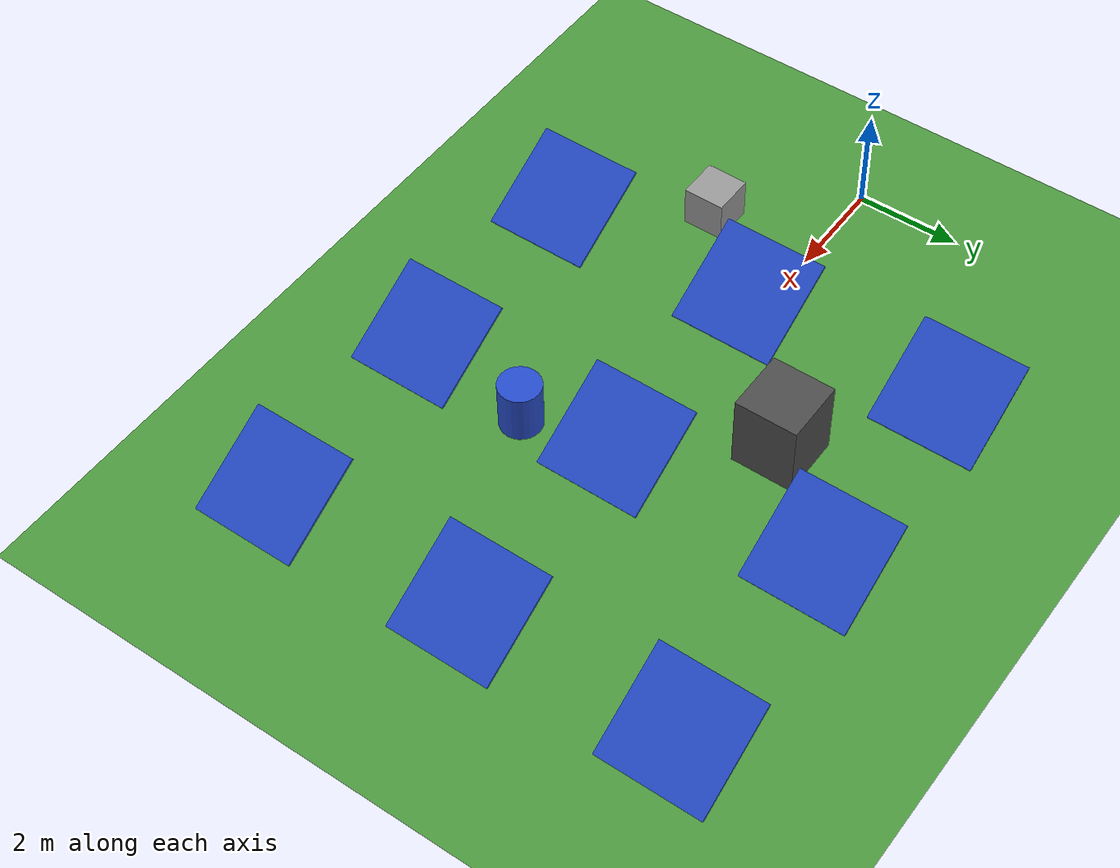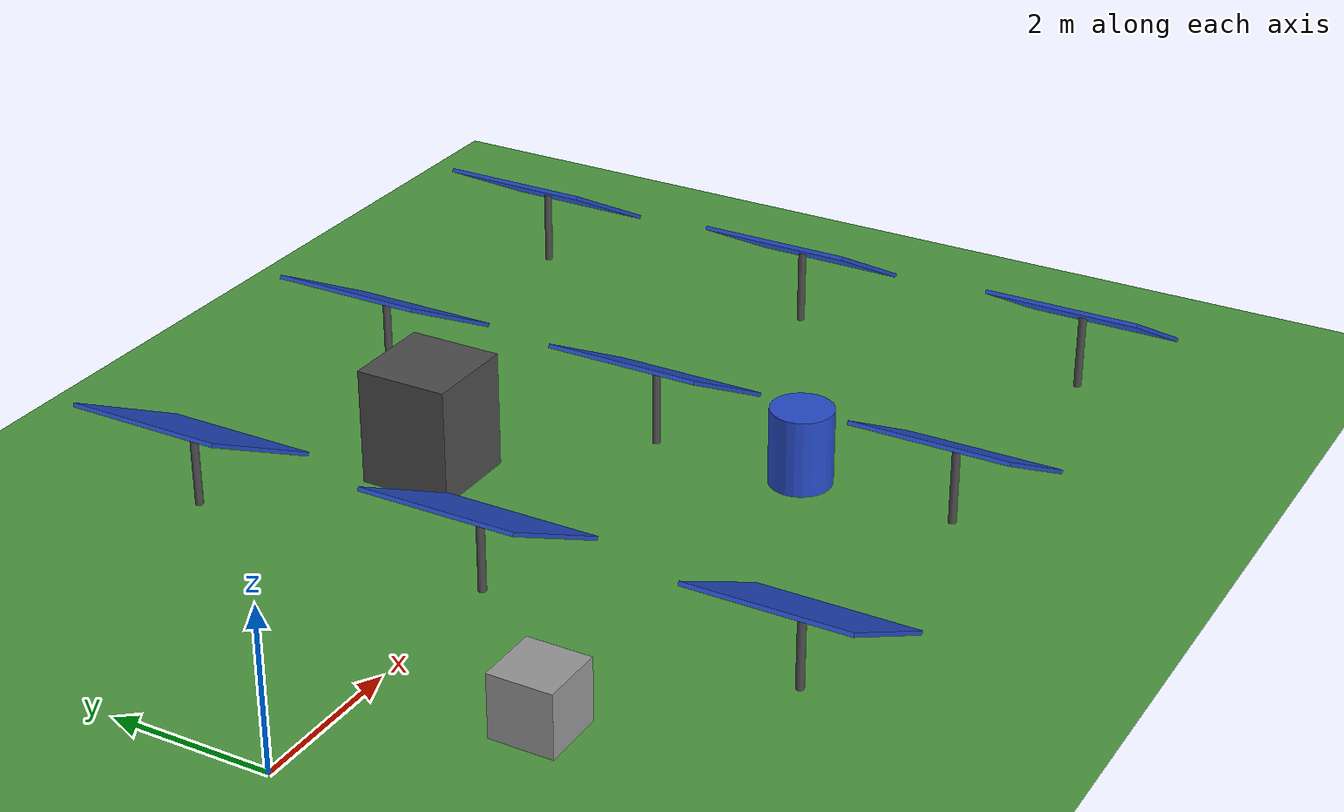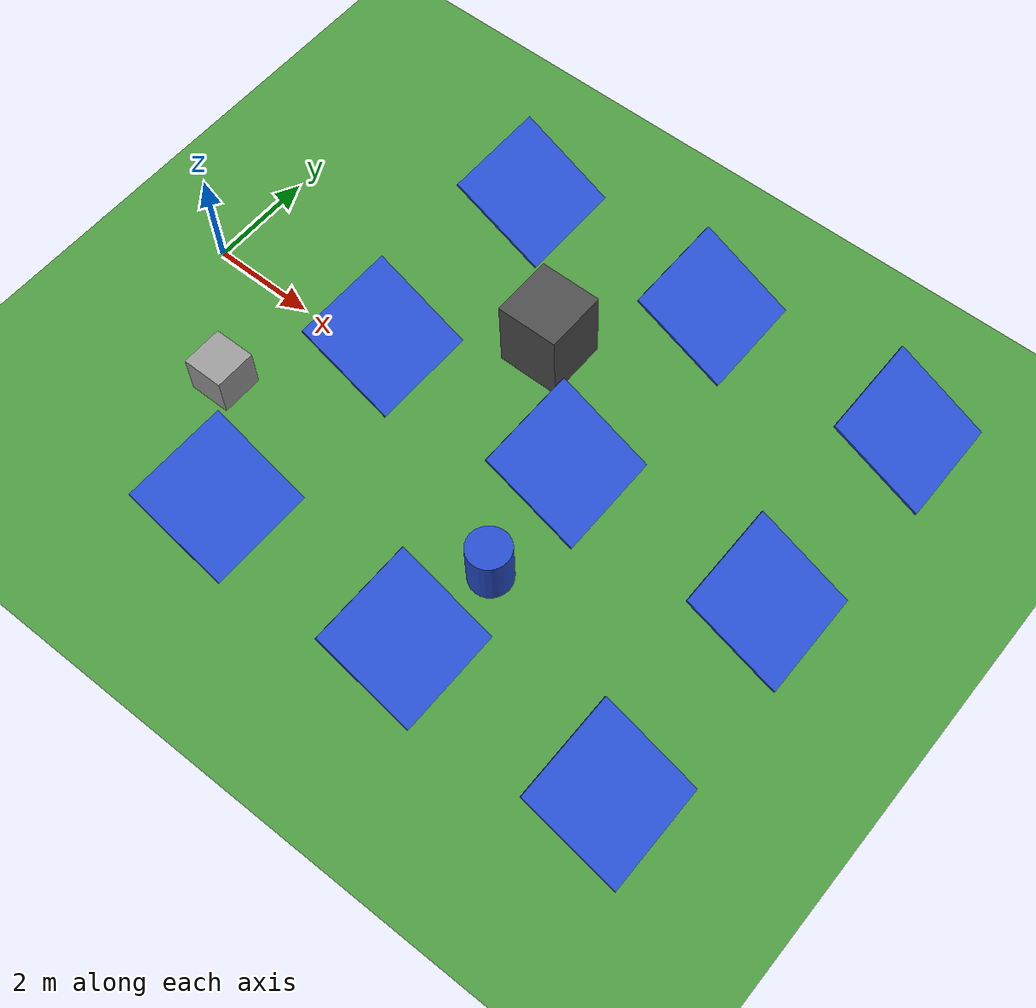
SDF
<?xml version="1.0" ?>
<sdf version="1.6">
  <world name="solar_farm_mega">
    <include>
      <uri>model://sun</uri>
    </include>

    <model name="ground_plane">
      <static>true</static>
      <link name="link">
        <collision name="collision">
          <geometry>
            <plane>
              <normal>0 0 1</normal>
              <size>100 100</size>
            </plane>
          </geometry>
          <surface>
            <friction>
              <ode>
                <mu>100</mu>
                <mu2>50</mu2>
              </ode>
            </friction>
          </surface>
        </collision>
        <visual name="visual">
          <geometry>
            <plane>
              <normal>0 0 1</normal>
              <size>100 100</size>
            </plane>
          </geometry>
          <material>
            <script>
              <uri>file://media/materials/scripts/gazebo.material</uri>
              <name>Gazebo/Grass</name>
            </script>
          </material>
        </visual>
      </link>
    </model>

    <model name="panel_1_1">
      <static>true</static>
      <pose>4 4 0 0 0 0</pose>
      <link name="base">
        <visual name="pole">
          <pose>0 0 0.5 0 0 0</pose>
          <geometry>
            <cylinder>
              <radius>0.05</radius>
              <length>1.0</length>
            </cylinder>
          </geometry>
          <material>
            <script>
              <name>Gazebo/DarkGrey</name>
            </script>
          </material>
        </visual>
        <visual name="glass">
          <pose>0 0 1.0 0 0.5 0</pose>
          <geometry>
            <box>
              <size>2.0 2.0 0.05</size>
            </box>
          </geometry>
          <material>
            <script>
              <name>Gazebo/Blue</name>
            </script>
          </material>
        </visual>
        <collision name="col">
          <pose>0 0 1.0 0 0.5 0</pose>
          <geometry>
            <box>
              <size>2.0 2.0 0.05</size>
            </box>
          </geometry>
        </collision>
      </link>
    </model>

    <model name="panel_1_2">
      <static>true</static>
      <pose>8 4 0 0 0 0</pose>
      <link name="base">
        <visual name="pole">
          <pose>0 0 0.5 0 0 0</pose>
          <geometry>
            <cylinder>
              <radius>0.05</radius>
              <length>1.0</length>
            </cylinder>
          </geometry>
          <material>
            <script>
              <name>Gazebo/DarkGrey</name>
            </script>
          </material>
        </visual>
        <visual name="glass">
          <pose>0 0 1.0 0 0.5 0</pose>
          <geometry>
            <box>
              <size>2.0 2.0 0.05</size>
            </box>
          </geometry>
          <material>
            <script>
              <name>Gazebo/Blue</name>
            </script>
          </material>
        </visual>
        <collision name="col">
          <pose>0 0 1.0 0 0.5 0</pose>
          <geometry>
            <box>
              <size>2.0 2.0 0.05</size>
            </box>
          </geometry>
        </collision>
      </link>
    </model>

    <model name="panel_1_3">
      <static>true</static>
      <pose>12 4 0 0 0 0</pose>
      <link name="base">
        <visual name="pole">
          <pose>0 0 0.5 0 0 0</pose>
          <geometry>
            <cylinder>
              <radius>0.05</radius>
              <length>1.0</length>
            </cylinder>
          </geometry>
          <material>
            <script>
              <name>Gazebo/DarkGrey</name>
            </script>
          </material>
        </visual>
        <visual name="glass">
          <pose>0 0 1.0 0 0.5 0</pose>
          <geometry>
            <box>
              <size>2.0 2.0 0.05</size>
            </box>
          </geometry>
          <material>
            <script>
              <name>Gazebo/Blue</name>
            </script>
          </material>
        </visual>
        <collision name="col">
          <pose>0 0 1.0 0 0.5 0</pose>
          <geometry>
            <box>
              <size>2.0 2.0 0.05</size>
            </box>
          </geometry>
        </collision>
      </link>
    </model>

    <model name="panel_2_1">
      <static>true</static>
      <pose>4 0 0 0 0 0</pose>
      <link name="base">
        <visual name="pole">
          <pose>0 0 0.5 0 0 0</pose>
          <geometry>
            <cylinder>
              <radius>0.05</radius>
              <length>1.0</length>
            </cylinder>
          </geometry>
          <material>
            <script>
              <name>Gazebo/DarkGrey</name>
            </script>
          </material>
        </visual>
        <visual name="glass">
          <pose>0 0 1.0 0 0.5 0</pose>
          <geometry>
            <box>
              <size>2.0 2.0 0.05</size>
            </box>
          </geometry>
          <material>
            <script>
              <name>Gazebo/Blue</name>
            </script>
          </material>
        </visual>
        <collision name="col">
          <pose>0 0 1.0 0 0.5 0</pose>
          <geometry>
            <box>
              <size>2.0 2.0 0.05</size>
            </box>
          </geometry>
        </collision>
      </link>
    </model>

    <model name="panel_2_2">
      <static>true</static>
      <pose>8 0 0 0 0 0</pose>
      <link name="base">
        <visual name="pole">
          <pose>0 0 0.5 0 0 0</pose>
          <geometry>
            <cylinder>
              <radius>0.05</radius>
              <length>1.0</length>
            </cylinder>
          </geometry>
          <material>
            <script>
              <name>Gazebo/DarkGrey</name>
            </script>
          </material>
        </visual>
        <visual name="glass">
          <pose>0 0 1.0 0 0.5 0</pose>
          <geometry>
            <box>
              <size>2.0 2.0 0.05</size>
            </box>
          </geometry>
          <material>
            <script>
              <name>Gazebo/Blue</name>
            </script>
          </material>
        </visual>
        <collision name="col">
          <pose>0 0 1.0 0 0.5 0</pose>
          <geometry>
            <box>
              <size>2.0 2.0 0.05</size>
            </box>
          </geometry>
        </collision>
      </link>
    </model>

    <model name="panel_2_3">
      <static>true</static>
      <pose>12 0 0 0 0 0</pose>
      <link name="base">
        <visual name="pole">
          <pose>0 0 0.5 0 0 0</pose>
          <geometry>
            <cylinder>
              <radius>0.05</radius>
              <length>1.0</length>
            </cylinder>
          </geometry>
          <material>
            <script>
              <name>Gazebo/DarkGrey</name>
            </script>
          </material>
        </visual>
        <visual name="glass">
          <pose>0 0 1.0 0 0.5 0</pose>
          <geometry>
            <box>
              <size>2.0 2.0 0.05</size>
            </box>
          </geometry>
          <material>
            <script>
              <name>Gazebo/Blue</name>
            </script>
          </material>
        </visual>
        <collision name="col">
          <pose>0 0 1.0 0 0.5 0</pose>
          <geometry>
            <box>
              <size>2.0 2.0 0.05</size>
            </box>
          </geometry>
        </collision>
      </link>
    </model>

    <model name="panel_3_1">
      <static>true</static>
      <pose>4 -4 0 0 0 0</pose>
      <link name="base">
        <visual name="pole">
          <pose>0 0 0.5 0 0 0</pose>
          <geometry>
            <cylinder>
              <radius>0.05</radius>
              <length>1.0</length>
            </cylinder>
          </geometry>
          <material>
            <script>
              <name>Gazebo/DarkGrey</name>
            </script>
          </material>
        </visual>
        <visual name="glass">
          <pose>0 0 1.0 0 0.5 0</pose>
          <geometry>
            <box>
              <size>2.0 2.0 0.05</size>
            </box>
          </geometry>
          <material>
            <script>
              <name>Gazebo/Blue</name>
            </script>
          </material>
        </visual>
        <collision name="col">
          <pose>0 0 1.0 0 0.5 0</pose>
          <geometry>
            <box>
              <size>2.0 2.0 0.05</size>
            </box>
          </geometry>
        </collision>
      </link>
    </model>

    <model name="panel_3_2">
      <static>true</static>
      <pose>8 -4 0 0 0 0</pose>
      <link name="base">
        <visual name="pole">
          <pose>0 0 0.5 0 0 0</pose>
          <geometry>
            <cylinder>
              <radius>0.05</radius>
              <length>1.0</length>
            </cylinder>
          </geometry>
          <material>
            <script>
              <name>Gazebo/DarkGrey</name>
            </script>
          </material>
        </visual>
        <visual name="glass">
          <pose>0 0 1.0 0 0.5 0</pose>
          <geometry>
            <box>
              <size>2.0 2.0 0.05</size>
            </box>
          </geometry>
          <material>
            <script>
              <name>Gazebo/Blue</name>
            </script>
          </material>
        </visual>
        <collision name="col">
          <pose>0 0 1.0 0 0.5 0</pose>
          <geometry>
            <box>
              <size>2.0 2.0 0.05</size>
            </box>
          </geometry>
        </collision>
      </link>
    </model>

    <model name="panel_3_3">
      <static>true</static>
      <pose>12 -4 0 0 0 0</pose>
      <link name="base">
        <visual name="pole">
          <pose>0 0 0.5 0 0 0</pose>
          <geometry>
            <cylinder>
              <radius>0.05</radius>
              <length>1.0</length>
            </cylinder>
          </geometry>
          <material>
            <script>
              <name>Gazebo/DarkGrey</name>
            </script>
          </material>
        </visual>
        <visual name="glass">
          <pose>0 0 1.0 0 0.5 0</pose>
          <geometry>
            <box>
              <size>2.0 2.0 0.05</size>
            </box>
          </geometry>
          <material>
            <script>
              <name>Gazebo/Blue</name>
            </script>
          </material>
        </visual>
        <collision name="col">
          <pose>0 0 1.0 0 0.5 0</pose>
          <geometry>
            <box>
              <size>2.0 2.0 0.05</size>
            </box>
          </geometry>
        </collision>
      </link>
    </model>

    <model name="transformer_box">
      <static>true</static>
      <pose>6 2 0.75 0 0 0</pose>
      <link name="link">
        <collision name="col">
          <geometry>
            <box>
              <size>1.2 1.2 1.5</size>
            </box>
          </geometry>
        </collision>
        <visual name="vis">
          <geometry>
            <box>
              <size>1.2 1.2 1.5</size>
            </box>
          </geometry>
          <material>
            <script>
              <name>Gazebo/DarkGrey</name>
            </script>
          </material>
        </visual>
      </link>
    </model>

    <model name="water_barrel">
      <static>true</static>
      <pose>8 -2 0.5 0 0 0</pose>
      <link name="link">
        <collision name="col">
          <geometry>
            <cylinder>
              <radius>0.4</radius>
              <length>1.0</length>
            </cylinder>
          </geometry>
        </collision>
        <visual name="vis">
          <geometry>
            <cylinder>
              <radius>0.4</radius>
              <length>1.0</length>
            </cylinder>
          </geometry>
          <material>
            <script>
              <name>Gazebo/Blue</name>
            </script>
          </material>
        </visual>
      </link>
    </model>

    <model name="concrete_block">
      <static>true</static>
      <pose>2 -2 0.4 0 0 0</pose>
      <link name="link">
        <collision name="col">
          <geometry>
            <box>
              <size>0.8 0.8 0.8</size>
            </box>
          </geometry>
        </collision>
        <visual name="vis">
          <geometry>
            <box>
              <size>0.8 0.8 0.8</size>
            </box>
          </geometry>
          <material>
            <script>
              <name>Gazebo/Grey</name>
            </script>
          </material>
        </visual>
      </link>
    </model>

  </world>
</sdf>
